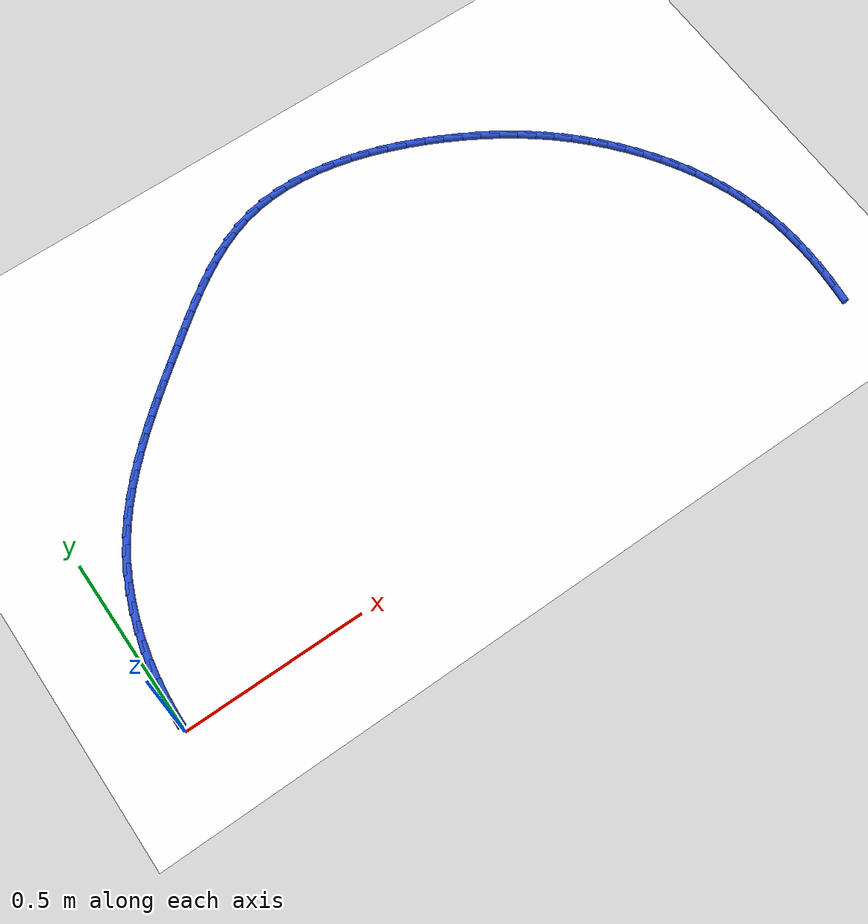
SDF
<sdf version="1.6">
 <world name="default">
  <model name="ground_plane">
   <static>1</static>
   <link name="link">
    <collision name="collision">
     <geometry><plane><normal>0 0 1</normal><size>100 100</size></plane></geometry>
     <surface><friction><ode><mu>100</mu><mu2>50</mu2></ode></friction></surface>
    </collision>
    <visual name="visual">
     <cast_shadows>0</cast_shadows>
     <geometry><plane><normal>0 0 1</normal><size>100 100</size></plane></geometry>
     <material>
      <script><uri>file://media/materials/scripts/gazebo.material</uri><name>Gazebo/WhiteGlow</name></script>
     </material>
    </visual>
   </link>
  </model>
  <model name="line">
   <link name="link_1">
    <pose>0.0011093586149814216 0.051502513885111345 0.01 0 1.57 1.5006333988848262</pose>
    <collision name="collision">
     <geometry><cylinder><radius>0.01</radius><length>0.08</length></cylinder></geometry>
    </collision>
    <visual name="visual">
     <material>
      <script><name>Gazebo/Blue</name><uri>file://media/materials/scripts/gazebo.material</uri></script>
     </material>
     <geometry><cylinder><radius>0.01</radius><length>0.08</length></cylinder></geometry>
    </visual>
   </link>
   <link name="link_2">
    <pose>0.004719447955855681 0.1028710006820275 0.01 0 1.57 1.451186098846276</pose>
    <collision name="collision">
     <geometry><cylinder><radius>0.01</radius><length>0.08</length></cylinder></geometry>
    </collision>
    <visual name="visual">
     <material>
      <script><name>Gazebo/Blue</name><uri>file://media/materials/scripts/gazebo.material</uri></script>
     </material>
     <geometry><cylinder><radius>0.01</radius><length>0.08</length></cylinder></geometry>
    </visual>
   </link>
   <link name="link_3">
    <pose>0.010852572191175872 0.1539021569687486 0.01 0 1.57 1.4005766148217693</pose>
    <collision name="collision">
     <geometry><cylinder><radius>0.01</radius><length>0.08</length></cylinder></geometry>
    </collision>
    <visual name="visual">
     <material>
      <script><name>Gazebo/Blue</name><uri>file://media/materials/scripts/gazebo.material</uri></script>
     </material>
     <geometry><cylinder><radius>0.01</radius><length>0.08</length></cylinder></geometry>
    </visual>
   </link>
   <link name="link_4">
    <pose>0.019531035489495092 0.2043926793232748 0.01 0 1.57 1.3484656645376751</pose>
    <collision name="collision">
     <geometry><cylinder><radius>0.01</radius><length>0.08</length></cylinder></geometry>
    </collision>
    <visual name="visual">
     <material>
      <script><name>Gazebo/Blue</name><uri>file://media/materials/scripts/gazebo.material</uri></script>
     </material>
     <geometry><cylinder><radius>0.01</radius><length>0.08</length></cylinder></geometry>
    </visual>
   </link>
   <link name="link_5">
    <pose>0.03077714201936644 0.2541392643236064 0.01 0 1.57 1.294517722681078</pose>
    <collision name="collision">
     <geometry><cylinder><radius>0.01</radius><length>0.08</length></cylinder></geometry>
    </collision>
    <visual name="visual">
     <material>
      <script><name>Gazebo/Blue</name><uri>file://media/materials/scripts/gazebo.material</uri></script>
     </material>
     <geometry><cylinder><radius>0.01</radius><length>0.08</length></cylinder></geometry>
    </visual>
   </link>
   <link name="link_6">
    <pose>0.04461319594934299 0.3029386085477435 0.01 0 1.57 1.2384051902610684</pose>
    <collision name="collision">
     <geometry><cylinder><radius>0.01</radius><length>0.08</length></cylinder></geometry>
    </collision>
    <visual name="visual">
     <material>
      <script><name>Gazebo/Blue</name><uri>file://media/materials/scripts/gazebo.material</uri></script>
     </material>
     <geometry><cylinder><radius>0.01</radius><length>0.08</length></cylinder></geometry>
    </visual>
   </link>
   <link name="link_7">
    <pose>0.061061501447977826 0.35058740857368625 0.01 0 1.57 1.1798156394811272</pose>
    <collision name="collision">
     <geometry><cylinder><radius>0.01</radius><length>0.08</length></cylinder></geometry>
    </collision>
    <visual name="visual">
     <material>
      <script><name>Gazebo/Blue</name><uri>file://media/materials/scripts/gazebo.material</uri></script>
     </material>
     <geometry><cylinder><radius>0.01</radius><length>0.08</length></cylinder></geometry>
    </visual>
   </link>
   <link name="link_8">
    <pose>0.08014436268382409 0.39688236097943513 0.01 0 1.57 1.1184628545699555</pose>
    <collision name="collision">
     <geometry><cylinder><radius>0.01</radius><length>0.08</length></cylinder></geometry>
    </collision>
    <visual name="visual">
     <material>
      <script><name>Gazebo/Blue</name><uri>file://media/materials/scripts/gazebo.material</uri></script>
     </material>
     <geometry><cylinder><radius>0.01</radius><length>0.08</length></cylinder></geometry>
    </visual>
   </link>
   <link name="link_9">
    <pose>0.1018840838254348 0.44162016234298995 0.01 0 1.57 1.0542410567128926</pose>
    <collision name="collision">
     <geometry><cylinder><radius>0.01</radius><length>0.08</length></cylinder></geometry>
    </collision>
    <visual name="visual">
     <material>
      <script><name>Gazebo/Blue</name><uri>file://media/materials/scripts/gazebo.material</uri></script>
     </material>
     <geometry><cylinder><radius>0.01</radius><length>0.08</length></cylinder></geometry>
    </visual>
   </link>
   <link name="link_10">
    <pose>0.12629874857501527 0.48460396842456505 0.01 0 1.57 0.9908481922307152</pose>
    <collision name="collision">
     <geometry><cylinder><radius>0.01</radius><length>0.08</length></cylinder></geometry>
    </collision>
    <visual name="visual">
     <material>
      <script><name>Gazebo/Blue</name><uri>file://media/materials/scripts/gazebo.material</uri></script>
     </material>
     <geometry><cylinder><radius>0.01</radius><length>0.08</length></cylinder></geometry>
    </visual>
   </link>
   <link name="link_11">
    <pose>0.15329297294728028 0.525810590786482 0.01 0 1.57 0.932835275977284</pose>
    <collision name="collision">
     <geometry><cylinder><radius>0.01</radius><length>0.08</length></cylinder></geometry>
    </collision>
    <visual name="visual">
     <material>
      <script><name>Gazebo/Blue</name><uri>file://media/materials/scripts/gazebo.material</uri></script>
     </material>
     <geometry><cylinder><radius>0.01</radius><length>0.08</length></cylinder></geometry>
    </visual>
   </link>
   <link name="link_12">
    <pose>0.18264797115674028 0.5654057003841624 0.01 0 1.57 0.8808437110636431</pose>
    <collision name="collision">
     <geometry><cylinder><radius>0.01</radius><length>0.08</length></cylinder></geometry>
    </collision>
    <visual name="visual">
     <material>
      <script><name>Gazebo/Blue</name><uri>file://media/materials/scripts/gazebo.material</uri></script>
     </material>
     <geometry><cylinder><radius>0.01</radius><length>0.08</length></cylinder></geometry>
    </visual>
   </link>
   <link name="link_13">
    <pose>0.21413874574087377 0.6035644747892404 0.01 0 1.57 0.8350884427521786</pose>
    <collision name="collision">
     <geometry><cylinder><radius>0.01</radius><length>0.08</length></cylinder></geometry>
    </collision>
    <visual name="visual">
     <material>
      <script><name>Gazebo/Blue</name><uri>file://media/materials/scripts/gazebo.material</uri></script>
     </material>
     <geometry><cylinder><radius>0.01</radius><length>0.08</length></cylinder></geometry>
    </visual>
   </link>
   <link name="link_14">
    <pose>0.24754029923715914 0.6404620915733497 0.01 0 1.57 0.7956137783176925</pose>
    <collision name="collision">
     <geometry><cylinder><radius>0.01</radius><length>0.08</length></cylinder></geometry>
    </collision>
    <visual name="visual">
     <material>
      <script><name>Gazebo/Blue</name><uri>file://media/materials/scripts/gazebo.material</uri></script>
     </material>
     <geometry><cylinder><radius>0.01</radius><length>0.08</length></cylinder></geometry>
    </visual>
   </link>
   <link name="link_15">
    <pose>0.2826276341830748 0.6762737283081242 0.01 0 1.57 0.7623468404164939</pose>
    <collision name="collision">
     <geometry><cylinder><radius>0.01</radius><length>0.08</length></cylinder></geometry>
    </collision>
    <visual name="visual">
     <material>
      <script><name>Gazebo/Blue</name><uri>file://media/materials/scripts/gazebo.material</uri></script>
     </material>
     <geometry><cylinder><radius>0.01</radius><length>0.08</length></cylinder></geometry>
    </visual>
   </link>
   <link name="link_16">
    <pose>0.3191757531160993 0.7111745625651976 0.01 0 1.57 0.7351452944888938</pose>
    <collision name="collision">
     <geometry><cylinder><radius>0.01</radius><length>0.08</length></cylinder></geometry>
    </collision>
    <visual name="visual">
     <material>
      <script><name>Gazebo/Blue</name><uri>file://media/materials/scripts/gazebo.material</uri></script>
     </material>
     <geometry><cylinder><radius>0.01</radius><length>0.08</length></cylinder></geometry>
    </visual>
   </link>
   <link name="link_17">
    <pose>0.356959658573711 0.7453397719162042 0.01 0 1.57 0.7138358860820746</pose>
    <collision name="collision">
     <geometry><cylinder><radius>0.01</radius><length>0.08</length></cylinder></geometry>
    </collision>
    <visual name="visual">
     <material>
      <script><name>Gazebo/Blue</name><uri>file://media/materials/scripts/gazebo.material</uri></script>
     </material>
     <geometry><cylinder><radius>0.01</radius><length>0.08</length></cylinder></geometry>
    </visual>
   </link>
   <link name="link_18">
    <pose>0.39575435309338824 0.7789445339327775 0.01 0 1.57 0.6982431966821268</pose>
    <collision name="collision">
     <geometry><cylinder><radius>0.01</radius><length>0.08</length></cylinder></geometry>
    </collision>
    <visual name="visual">
     <material>
      <script><name>Gazebo/Blue</name><uri>file://media/materials/scripts/gazebo.material</uri></script>
     </material>
     <geometry><cylinder><radius>0.01</radius><length>0.08</length></cylinder></geometry>
    </visual>
   </link>
   <link name="link_19">
    <pose>0.4353348392126096 0.8121640261865515 0.01 0 1.57 0.6882095795351091</pose>
    <collision name="collision">
     <geometry><cylinder><radius>0.01</radius><length>0.08</length></cylinder></geometry>
    </collision>
    <visual name="visual">
     <material>
      <script><name>Gazebo/Blue</name><uri>file://media/materials/scripts/gazebo.material</uri></script>
     </material>
     <geometry><cylinder><radius>0.01</radius><length>0.08</length></cylinder></geometry>
    </visual>
   </link>
   <link name="link_20">
    <pose>0.4754761194688534 0.8451734262491596 0.01 0 1.57 0.6835715792836703</pose>
    <collision name="collision">
     <geometry><cylinder><radius>0.01</radius><length>0.08</length></cylinder></geometry>
    </collision>
    <visual name="visual">
     <material>
      <script><name>Gazebo/Blue</name><uri>file://media/materials/scripts/gazebo.material</uri></script>
     </material>
     <geometry><cylinder><radius>0.01</radius><length>0.08</length></cylinder></geometry>
    </visual>
   </link>
   <link name="link_21">
    <pose>0.515954029660438 0.8781461516192836 0.01 0 1.57 0.6794536050018125</pose>
    <collision name="collision">
     <geometry><cylinder><radius>0.01</radius><length>0.08</length></cylinder></geometry>
    </collision>
    <visual name="visual">
     <material>
      <script><name>Gazebo/Blue</name><uri>file://media/materials/scripts/gazebo.material</uri></script>
     </material>
     <geometry><cylinder><radius>0.01</radius><length>0.08</length></cylinder></geometry>
    </visual>
   </link>
   <link name="link_22">
    <pose>0.5566547689698296 0.9110225023872168 0.01 0 1.57 0.6662531716833907</pose>
    <collision name="collision">
     <geometry><cylinder><radius>0.01</radius><length>0.08</length></cylinder></geometry>
    </collision>
    <visual name="visual">
     <material>
      <script><name>Gazebo/Blue</name><uri>file://media/materials/scripts/gazebo.material</uri></script>
     </material>
     <geometry><cylinder><radius>0.01</radius><length>0.08</length></cylinder></geometry>
    </visual>
   </link>
   <link name="link_23">
    <pose>0.5976842109271029 0.9432787668244965 0.01 0 1.57 0.6425754792943505</pose>
    <collision name="collision">
     <geometry><cylinder><radius>0.01</radius><length>0.08</length></cylinder></geometry>
    </collision>
    <visual name="visual">
     <material>
      <script><name>Gazebo/Blue</name><uri>file://media/materials/scripts/gazebo.material</uri></script>
     </material>
     <geometry><cylinder><radius>0.01</radius><length>0.08</length></cylinder></geometry>
    </visual>
   </link>
   <link name="link_24">
    <pose>0.6391742286995278 0.9743363149153198 0.01 0 1.57 0.6078891399633417</pose>
    <collision name="collision">
     <geometry><cylinder><radius>0.01</radius><length>0.08</length></cylinder></geometry>
    </collision>
    <visual name="visual">
     <material>
      <script><name>Gazebo/Blue</name><uri>file://media/materials/scripts/gazebo.material</uri></script>
     </material>
     <geometry><cylinder><radius>0.01</radius><length>0.08</length></cylinder></geometry>
    </visual>
   </link>
   <link name="link_25">
    <pose>0.6812566954543752 1.0036165166438862 0.01 0 1.57 0.561449712765511</pose>
    <collision name="collision">
     <geometry><cylinder><radius>0.01</radius><length>0.08</length></cylinder></geometry>
    </collision>
    <visual name="visual">
     <material>
      <script><name>Gazebo/Blue</name><uri>file://media/materials/scripts/gazebo.material</uri></script>
     </material>
     <geometry><cylinder><radius>0.01</radius><length>0.08</length></cylinder></geometry>
    </visual>
   </link>
   <link name="link_26">
    <pose>0.7240634843589152 1.0305407419943942 0.01 0 1.57 0.5024031201264866</pose>
    <collision name="collision">
     <geometry><cylinder><radius>0.01</radius><length>0.08</length></cylinder></geometry>
    </collision>
    <visual name="visual">
     <material>
      <script><name>Gazebo/Blue</name><uri>file://media/materials/scripts/gazebo.material</uri></script>
     </material>
     <geometry><cylinder><radius>0.01</radius><length>0.08</length></cylinder></geometry>
    </visual>
   </link>
   <link name="link_27">
    <pose>0.7677264685804182 1.0545303609510417 0.01 0 1.57 0.4299717081903445</pose>
    <collision name="collision">
     <geometry><cylinder><radius>0.01</radius><length>0.08</length></cylinder></geometry>
    </collision>
    <visual name="visual">
     <material>
      <script><name>Gazebo/Blue</name><uri>file://media/materials/scripts/gazebo.material</uri></script>
     </material>
     <geometry><cylinder><radius>0.01</radius><length>0.08</length></cylinder></geometry>
    </visual>
   </link>
   <link name="link_28">
    <pose>0.8123775212861549 1.075006743498028 0.01 0 1.57 0.34375486855071014</pose>
    <collision name="collision">
     <geometry><cylinder><radius>0.01</radius><length>0.08</length></cylinder></geometry>
    </collision>
    <visual name="visual">
     <material>
      <script><name>Gazebo/Blue</name><uri>file://media/materials/scripts/gazebo.material</uri></script>
     </material>
     <geometry><cylinder><radius>0.01</radius><length>0.08</length></cylinder></geometry>
    </visual>
   </link>
   <link name="link_29">
    <pose>0.8581485156433953 1.091391259619551 0.01 0 1.57 0.2445173400651729</pose>
    <collision name="collision">
     <geometry><cylinder><radius>0.01</radius><length>0.08</length></cylinder></geometry>
    </collision>
    <visual name="visual">
     <material>
      <script><name>Gazebo/Blue</name><uri>file://media/materials/scripts/gazebo.material</uri></script>
     </material>
     <geometry><cylinder><radius>0.01</radius><length>0.08</length></cylinder></geometry>
    </visual>
   </link>
   <link name="link_30">
    <pose>0.9051642640504062 1.1031221543375993 0.01 0 1.57 0.14290905675022753</pose>
    <collision name="collision">
     <geometry><cylinder><radius>0.01</radius><length>0.08</length></cylinder></geometry>
    </collision>
    <visual name="visual">
     <material>
      <script><name>Gazebo/Blue</name><uri>file://media/materials/scripts/gazebo.material</uri></script>
     </material>
     <geometry><cylinder><radius>0.01</radius><length>0.08</length></cylinder></geometry>
    </visual>
   </link>
   <link name="link_31">
    <pose>0.953373309573949 1.1100589513802746 0.01 0 1.57 0.04964310550377925</pose>
    <collision name="collision">
     <geometry><cylinder><radius>0.01</radius><length>0.08</length></cylinder></geometry>
    </collision>
    <visual name="visual">
     <material>
      <script><name>Gazebo/Blue</name><uri>file://media/materials/scripts/gazebo.material</uri></script>
     </material>
     <geometry><cylinder><radius>0.01</radius><length>0.08</length></cylinder></geometry>
    </visual>
   </link>
   <link name="link_32">
    <pose>1.0025398566850432 1.1125017384946052 0.01 0 1.57 -0.03467765664063549</pose>
    <collision name="collision">
     <geometry><cylinder><radius>0.01</radius><length>0.08</length></cylinder></geometry>
    </collision>
    <visual name="visual">
     <material>
      <script><name>Gazebo/Blue</name><uri>file://media/materials/scripts/gazebo.material</uri></script>
     </material>
     <geometry><cylinder><radius>0.01</radius><length>0.08</length></cylinder></geometry>
    </visual>
   </link>
   <link name="link_33">
    <pose>1.0524194342191642 1.110771337950668 0.01 0 1.57 -0.11043215075473291</pose>
    <collision name="collision">
     <geometry><cylinder><radius>0.01</radius><length>0.08</length></cylinder></geometry>
    </collision>
    <visual name="visual">
     <material>
      <script><name>Gazebo/Blue</name><uri>file://media/materials/scripts/gazebo.material</uri></script>
     </material>
     <geometry><cylinder><radius>0.01</radius><length>0.08</length></cylinder></geometry>
    </visual>
   </link>
   <link name="link_34">
    <pose>1.102767571011787 1.105188572018541 0.01 0 1.57 -0.1783095244009393</pose>
    <collision name="collision">
     <geometry><cylinder><radius>0.01</radius><length>0.08</length></cylinder></geometry>
    </collision>
    <visual name="visual">
     <material>
      <script><name>Gazebo/Blue</name><uri>file://media/materials/scripts/gazebo.material</uri></script>
     </material>
     <geometry><cylinder><radius>0.01</radius><length>0.08</length></cylinder></geometry>
    </visual>
   </link>
   <link name="link_35">
    <pose>1.1533397958983878 1.096074262968301 0.01 0 1.57 -0.23914407573777555</pose>
    <collision name="collision">
     <geometry><cylinder><radius>0.01</radius><length>0.08</length></cylinder></geometry>
    </collision>
    <visual name="visual">
     <material>
      <script><name>Gazebo/Blue</name><uri>file://media/materials/scripts/gazebo.material</uri></script>
     </material>
     <geometry><cylinder><radius>0.01</radius><length>0.08</length></cylinder></geometry>
    </visual>
   </link>
   <link name="link_36">
    <pose>1.2038916377144395 1.083749233070025 0.01 0 1.57 -0.2938055368933296</pose>
    <collision name="collision">
     <geometry><cylinder><radius>0.01</radius><length>0.08</length></cylinder></geometry>
    </collision>
    <visual name="visual">
     <material>
      <script><name>Gazebo/Blue</name><uri>file://media/materials/scripts/gazebo.material</uri></script>
     </material>
     <geometry><cylinder><radius>0.01</radius><length>0.08</length></cylinder></geometry>
    </visual>
   </link>
   <link name="link_37">
    <pose>1.254178625295419 1.0685343045937907 0.01 0 1.57 -0.3431356167451207</pose>
    <collision name="collision">
     <geometry><cylinder><radius>0.01</radius><length>0.08</length></cylinder></geometry>
    </collision>
    <visual name="visual">
     <material>
      <script><name>Gazebo/Blue</name><uri>file://media/materials/scripts/gazebo.material</uri></script>
     </material>
     <geometry><cylinder><radius>0.01</radius><length>0.08</length></cylinder></geometry>
    </visual>
   </link>
   <link name="link_38">
    <pose>1.3039562874768011 1.050750299809675 0.01 0 1.57 -0.38791747073233596</pose>
    <collision name="collision">
     <geometry><cylinder><radius>0.01</radius><length>0.08</length></cylinder></geometry>
    </collision>
    <visual name="visual">
     <material>
      <script><name>Gazebo/Blue</name><uri>file://media/materials/scripts/gazebo.material</uri></script>
     </material>
     <geometry><cylinder><radius>0.01</radius><length>0.08</length></cylinder></geometry>
    </visual>
   </link>
   <link name="link_39">
    <pose>1.352980153094061 1.0307180409877554 0.01 0 1.57 -0.428866404532068</pose>
    <collision name="collision">
     <geometry><cylinder><radius>0.01</radius><length>0.08</length></cylinder></geometry>
    </collision>
    <visual name="visual">
     <material>
      <script><name>Gazebo/Blue</name><uri>file://media/materials/scripts/gazebo.material</uri></script>
     </material>
     <geometry><cylinder><radius>0.01</radius><length>0.08</length></cylinder></geometry>
    </visual>
   </link>
   <link name="link_40">
    <pose>1.4010057509826734 1.0087583503981095 0.01 0 1.57 -0.46663347183771037</pose>
    <collision name="collision">
     <geometry><cylinder><radius>0.01</radius><length>0.08</length></cylinder></geometry>
    </collision>
    <visual name="visual">
     <material>
      <script><name>Gazebo/Blue</name><uri>file://media/materials/scripts/gazebo.material</uri></script>
     </material>
     <geometry><cylinder><radius>0.01</radius><length>0.08</length></cylinder></geometry>
    </visual>
   </link>
   <link name="link_41">
    <pose>1.447788609978114 0.9851920503108141 0.01 0 1.57 -0.5022545461170624</pose>
    <collision name="collision">
     <geometry><cylinder><radius>0.01</radius><length>0.08</length></cylinder></geometry>
    </collision>
    <visual name="visual">
     <material>
      <script><name>Gazebo/Blue</name><uri>file://media/materials/scripts/gazebo.material</uri></script>
     </material>
     <geometry><cylinder><radius>0.01</radius><length>0.08</length></cylinder></geometry>
    </visual>
   </link>
   <link name="link_42">
    <pose>1.4931083480512597 0.9603009313988274 0.01 0 1.57 -0.5391174334842076</pose>
    <collision name="collision">
     <geometry><cylinder><radius>0.01</radius><length>0.08</length></cylinder></geometry>
    </collision>
    <visual name="visual">
     <material>
      <script><name>Gazebo/Blue</name><uri>file://media/materials/scripts/gazebo.material</uri></script>
     </material>
     <geometry><cylinder><radius>0.01</radius><length>0.08</length></cylinder></geometry>
    </visual>
   </link>
   <link name="link_43">
    <pose>1.5369112870818153 0.9340966741921345 0.01 0 1.57 -0.5784169069214348</pose>
    <collision name="collision">
     <geometry><cylinder><radius>0.01</radius><length>0.08</length></cylinder></geometry>
    </collision>
    <visual name="visual">
     <material>
      <script><name>Gazebo/Blue</name><uri>file://media/materials/scripts/gazebo.material</uri></script>
     </material>
     <geometry><cylinder><radius>0.01</radius><length>0.08</length></cylinder></geometry>
    </visual>
   </link>
   <link name="link_44">
    <pose>1.579214252106848 0.9064767230396399 0.01 0 1.57 -0.6199479812694418</pose>
    <collision name="collision">
     <geometry><cylinder><radius>0.01</radius><length>0.08</length></cylinder></geometry>
    </collision>
    <visual name="visual">
     <material>
      <script><name>Gazebo/Blue</name><uri>file://media/materials/scripts/gazebo.material</uri></script>
     </material>
     <geometry><cylinder><radius>0.01</radius><length>0.08</length></cylinder></geometry>
    </visual>
   </link>
   <link name="link_45">
    <pose>1.6200343197830422 0.8773381145912894 0.01 0 1.57 -0.6634352792202528</pose>
    <collision name="collision">
     <geometry><cylinder><radius>0.01</radius><length>0.08</length></cylinder></geometry>
    </collision>
    <visual name="visual">
     <material>
      <script><name>Gazebo/Blue</name><uri>file://media/materials/scripts/gazebo.material</uri></script>
     </material>
     <geometry><cylinder><radius>0.01</radius><length>0.08</length></cylinder></geometry>
    </visual>
   </link>
   <link name="link_46">
    <pose>1.6593885667670798 0.846577885497028 0.01 0 1.57 -0.708540826648186</pose>
    <collision name="collision">
     <geometry><cylinder><radius>0.01</radius><length>0.08</length></cylinder></geometry>
    </collision>
    <visual name="visual">
     <material>
      <script><name>Gazebo/Blue</name><uri>file://media/materials/scripts/gazebo.material</uri></script>
     </material>
     <geometry><cylinder><radius>0.01</radius><length>0.08</length></cylinder></geometry>
    </visual>
   </link>
   <link name="link_47">
    <pose>1.697294069715644 0.8140930724068015 0.01 0 1.57 -0.754872385168191</pose>
    <collision name="collision">
     <geometry><cylinder><radius>0.01</radius><length>0.08</length></cylinder></geometry>
    </collision>
    <visual name="visual">
     <material>
      <script><name>Gazebo/Blue</name><uri>file://media/materials/scripts/gazebo.material</uri></script>
     </material>
     <geometry><cylinder><radius>0.01</radius><length>0.08</length></cylinder></geometry>
    </visual>
   </link>
   <link name="link_48">
    <pose>1.7337679052854185 0.779780711970556 0.01 0 1.57 -0.8019955997219763</pose>
    <collision name="collision">
     <geometry><cylinder><radius>0.01</radius><length>0.08</length></cylinder></geometry>
    </collision>
    <visual name="visual">
     <material>
      <script><name>Gazebo/Blue</name><uri>file://media/materials/scripts/gazebo.material</uri></script>
     </material>
     <geometry><cylinder><radius>0.01</radius><length>0.08</length></cylinder></geometry>
    </visual>
   </link>
   <link name="link_49">
    <pose>1.7688267976240273 0.7435382919610115 0.01 0 1.57 -0.8493413654069485</pose>
    <collision name="collision">
     <geometry><cylinder><radius>0.01</radius><length>0.08</length></cylinder></geometry>
    </collision>
    <visual name="visual">
     <material>
      <script><name>Gazebo/Blue</name><uri>file://media/materials/scripts/gazebo.material</uri></script>
     </material>
     <geometry><cylinder><radius>0.01</radius><length>0.08</length></cylinder></geometry>
    </visual>
   </link>
   <link name="link_50">
    <pose>1.8024258567499727 0.7053421507117337 0.01 0 1.57 -0.8966860058773494</pose>
    <collision name="collision">
     <geometry><cylinder><radius>0.01</radius><length>0.08</length></cylinder></geometry>
    </collision>
    <visual name="visual">
     <material>
      <script><name>Gazebo/Blue</name><uri>file://media/materials/scripts/gazebo.material</uri></script>
     </material>
     <geometry><cylinder><radius>0.01</radius><length>0.08</length></cylinder></geometry>
    </visual>
   </link>
   <link name="link_51">
    <pose>1.834388666788364 0.665336946560271 0.01 0 1.57 -0.9444573804564839</pose>
    <collision name="collision">
     <geometry><cylinder><radius>0.01</radius><length>0.08</length></cylinder></geometry>
    </collision>
    <visual name="visual">
     <material>
      <script><name>Gazebo/Blue</name><uri>file://media/materials/scripts/gazebo.material</uri></script>
     </material>
     <geometry><cylinder><radius>0.01</radius><length>0.08</length></cylinder></geometry>
    </visual>
   </link>
   <link name="link_52">
    <pose>1.8645219016636616 0.6236889786402723 0.01 0 1.57 -0.9931270115025449</pose>
    <collision name="collision">
     <geometry><cylinder><radius>0.01</radius><length>0.08</length></cylinder></geometry>
    </collision>
    <visual name="visual">
     <material>
      <script><name>Gazebo/Blue</name><uri>file://media/materials/scripts/gazebo.material</uri></script>
     </material>
     <geometry><cylinder><radius>0.01</radius><length>0.08</length></cylinder></geometry>
    </visual>
   </link>
   <link name="link_53">
    <pose>1.8926322353003255 0.5805645460853853 0.01 0 1.57 -1.0431598376751319</pose>
    <collision name="collision">
     <geometry><cylinder><radius>0.01</radius><length>0.08</length></cylinder></geometry>
    </collision>
    <visual name="visual">
     <material>
      <script><name>Gazebo/Blue</name><uri>file://media/materials/scripts/gazebo.material</uri></script>
     </material>
     <geometry><cylinder><radius>0.01</radius><length>0.08</length></cylinder></geometry>
    </visual>
   </link>
   <link name="link_54">
    <pose>1.9185263416228167 0.5361299480292581 0.01 0 1.57 -1.0950189614665828</pose>
    <collision name="collision">
     <geometry><cylinder><radius>0.01</radius><length>0.08</length></cylinder></geometry>
    </collision>
    <visual name="visual">
     <material>
      <script><name>Gazebo/Blue</name><uri>file://media/materials/scripts/gazebo.material</uri></script>
     </material>
     <geometry><cylinder><radius>0.01</radius><length>0.08</length></cylinder></geometry>
    </visual>
   </link>
   <link name="link_55">
    <pose>1.9420108945555945 0.4905514836055398 0.01 0 1.57 -1.149167375334542</pose>
    <collision name="collision">
     <geometry><cylinder><radius>0.01</radius><length>0.08</length></cylinder></geometry>
    </collision>
    <visual name="visual">
     <material>
      <script><name>Gazebo/Blue</name><uri>file://media/materials/scripts/gazebo.material</uri></script>
     </material>
     <geometry><cylinder><radius>0.01</radius><length>0.08</length></cylinder></geometry>
    </visual>
   </link>
   <link name="link_56">
    <pose>1.9628925680231186 0.4439954519478784 0.01 0 1.57 -1.2060657198880578</pose>
    <collision name="collision">
     <geometry><cylinder><radius>0.01</radius><length>0.08</length></cylinder></geometry>
    </collision>
    <visual name="visual">
     <material>
      <script><name>Gazebo/Blue</name><uri>file://media/materials/scripts/gazebo.material</uri></script>
     </material>
     <geometry><cylinder><radius>0.01</radius><length>0.08</length></cylinder></geometry>
    </visual>
   </link>
   <link name="link_57">
    <pose>1.9809780359498501 0.3966281521899222 0.01 0 1.57 -1.2661647738186663</pose>
    <collision name="collision">
     <geometry><cylinder><radius>0.01</radius><length>0.08</length></cylinder></geometry>
    </collision>
    <visual name="visual">
     <material>
      <script><name>Gazebo/Blue</name><uri>file://media/materials/scripts/gazebo.material</uri></script>
     </material>
     <geometry><cylinder><radius>0.01</radius><length>0.08</length></cylinder></geometry>
    </visual>
   </link>
   <link name="link_58">
    <pose>1.9960739722602487 0.3486158834653192 0.01 0 1.57 -1.3298910673315896</pose>
    <collision name="collision">
     <geometry><cylinder><radius>0.01</radius><length>0.08</length></cylinder></geometry>
    </collision>
    <visual name="visual">
     <material>
      <script><name>Gazebo/Blue</name><uri>file://media/materials/scripts/gazebo.material</uri></script>
     </material>
     <geometry><cylinder><radius>0.01</radius><length>0.08</length></cylinder></geometry>
    </visual>
   </link>
   <link name="link_59">
    <pose>2.007987050878775 0.30012494490771807 0.01 0 1.57 -1.397408378195304</pose>
    <collision name="collision">
     <geometry><cylinder><radius>0.01</radius><length>0.08</length></cylinder></geometry>
    </collision>
    <visual name="visual">
     <material>
      <script><name>Gazebo/Blue</name><uri>file://media/materials/scripts/gazebo.material</uri></script>
     </material>
     <geometry><cylinder><radius>0.01</radius><length>0.08</length></cylinder></geometry>
    </visual>
   </link>
   <link name="link_60">
    <pose>2.0165354053231765 0.25131810345935723 0.01 0 1.57 -1.4637999040832934</pose>
    <collision name="collision">
     <geometry><cylinder><radius>0.01</radius><length>0.08</length></cylinder></geometry>
    </collision>
    <visual name="visual">
     <material>
      <script><name>Gazebo/Blue</name><uri>file://media/materials/scripts/gazebo.material</uri></script>
     </material>
     <geometry><cylinder><radius>0.01</radius><length>0.08</length></cylinder></geometry>
    </visual>
   </link>
   <link name="link_61">
    <pose>2.021802825214563 0.20227624285922544 0.01 0 1.57 -1.5234053273296353</pose>
    <collision name="collision">
     <geometry><cylinder><radius>0.01</radius><length>0.08</length></cylinder></geometry>
    </collision>
    <visual name="visual">
     <material>
      <script><name>Gazebo/Blue</name><uri>file://media/materials/scripts/gazebo.material</uri></script>
     </material>
     <geometry><cylinder><radius>0.01</radius><length>0.08</length></cylinder></geometry>
    </visual>
   </link>
   <link name="link_62">
    <pose>2.024139920056296 0.15299800493139668 0.01 0 1.57 1.5661329857002801</pose>
    <collision name="collision">
     <geometry><cylinder><radius>0.01</radius><length>0.08</length></cylinder></geometry>
    </collision>
    <visual name="visual">
     <material>
      <script><name>Gazebo/Blue</name><uri>file://media/materials/scripts/gazebo.material</uri></script>
     </material>
     <geometry><cylinder><radius>0.01</radius><length>0.08</length></cylinder></geometry>
    </visual>
   </link>
   <link name="link_63">
    <pose>2.023908991702196 0.10347842756577205 0.01 0 1.57 1.5218731405397554</pose>
    <collision name="collision">
     <geometry><cylinder><radius>0.01</radius><length>0.08</length></cylinder></geometry>
    </collision>
    <visual name="visual">
     <material>
      <script><name>Gazebo/Blue</name><uri>file://media/materials/scripts/gazebo.material</uri></script>
     </material>
     <geometry><cylinder><radius>0.01</radius><length>0.08</length></cylinder></geometry>
    </visual>
   </link>
   <link name="link_64">
    <pose>2.021472342006085 0.053712548652252896 0.01 0 1.57 1.4854322379404667</pose>
    <collision name="collision">
     <geometry><cylinder><radius>0.01</radius><length>0.08</length></cylinder></geometry>
    </collision>
    <visual name="visual">
     <material>
      <script><name>Gazebo/Blue</name><uri>file://media/materials/scripts/gazebo.material</uri></script>
     </material>
     <geometry><cylinder><radius>0.01</radius><length>0.08</length></cylinder></geometry>
    </visual>
   </link>
   <link name="link_65">
    <pose>2.0171922728217835 0.0036954060807397604 0.01 0 1.57 1.456696869077985</pose>
    <collision name="collision">
     <geometry><cylinder><radius>0.01</radius><length>0.08</length></cylinder></geometry>
    </collision>
    <visual name="visual">
     <material>
      <script><name>Gazebo/Blue</name><uri>file://media/materials/scripts/gazebo.material</uri></script>
     </material>
     <geometry><cylinder><radius>0.01</radius><length>0.08</length></cylinder></geometry>
    </visual>
   </link>
   <link name="link_131">
    <pose>0.0011048639956293058 0.051509781525881454 0.01 0 1.57 1.5493500195922416</pose>
    <collision name="collision">
     <geometry><cylinder><radius>0.01</radius><length>0.08</length></cylinder></geometry>
    </collision>
    <visual name="visual">
     <material>
      <script><name>Gazebo/Blue</name><uri>file://media/materials/scripts/gazebo.material</uri></script>
     </material>
     <geometry><cylinder><radius>0.01</radius><length>0.08</length></cylinder></geometry>
    </visual>
   </link>
  </model>
 </world>
</sdf>
